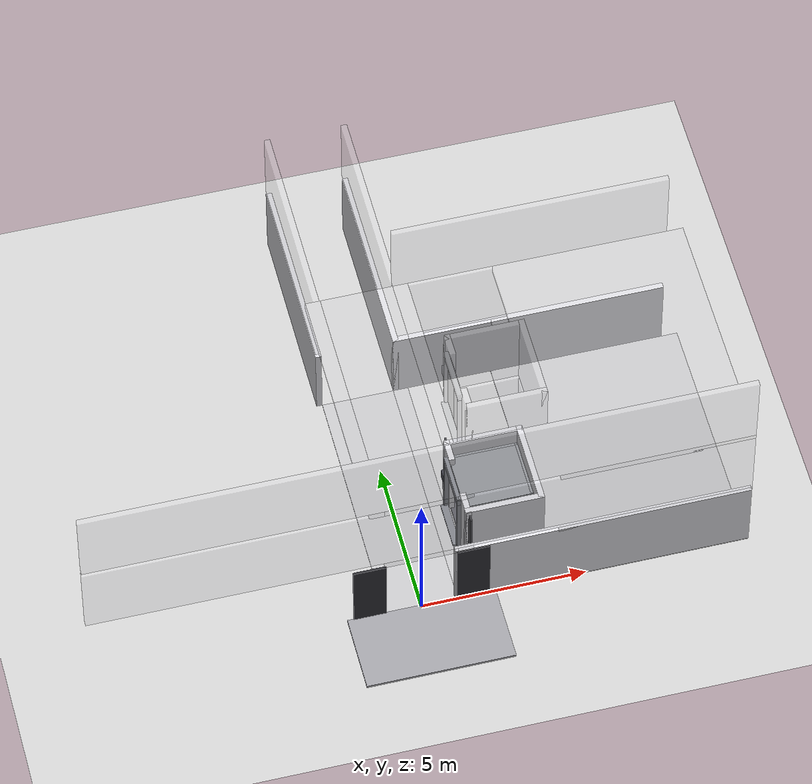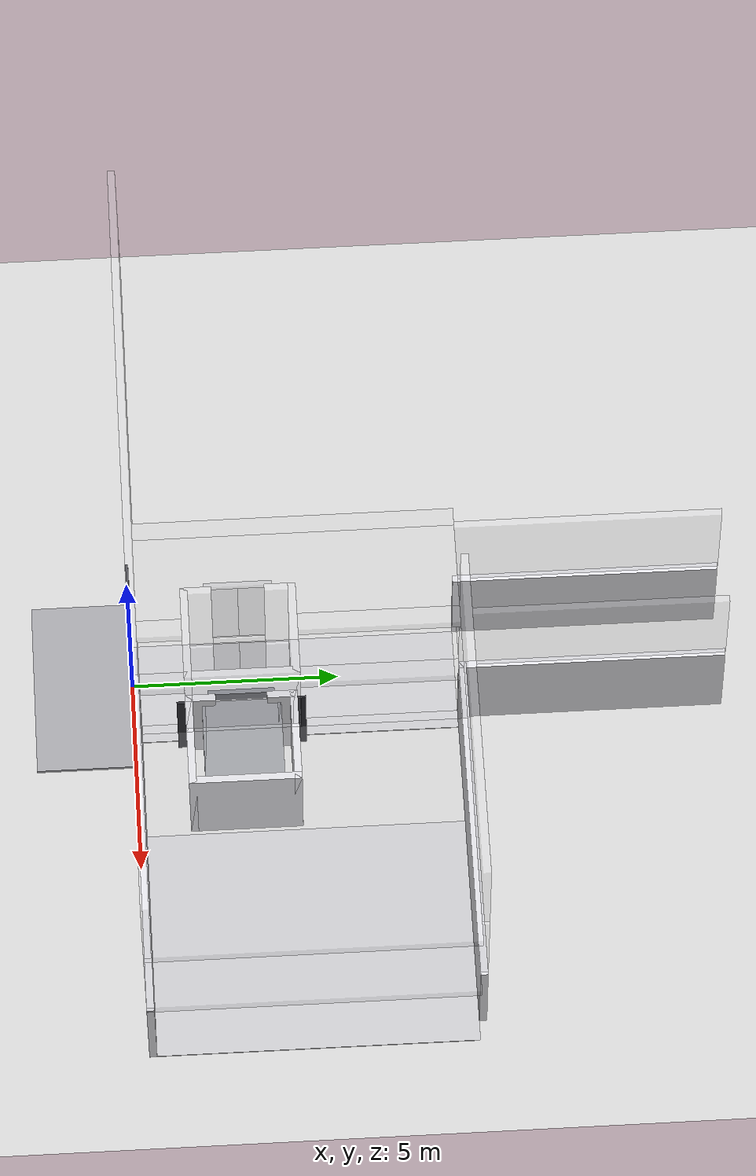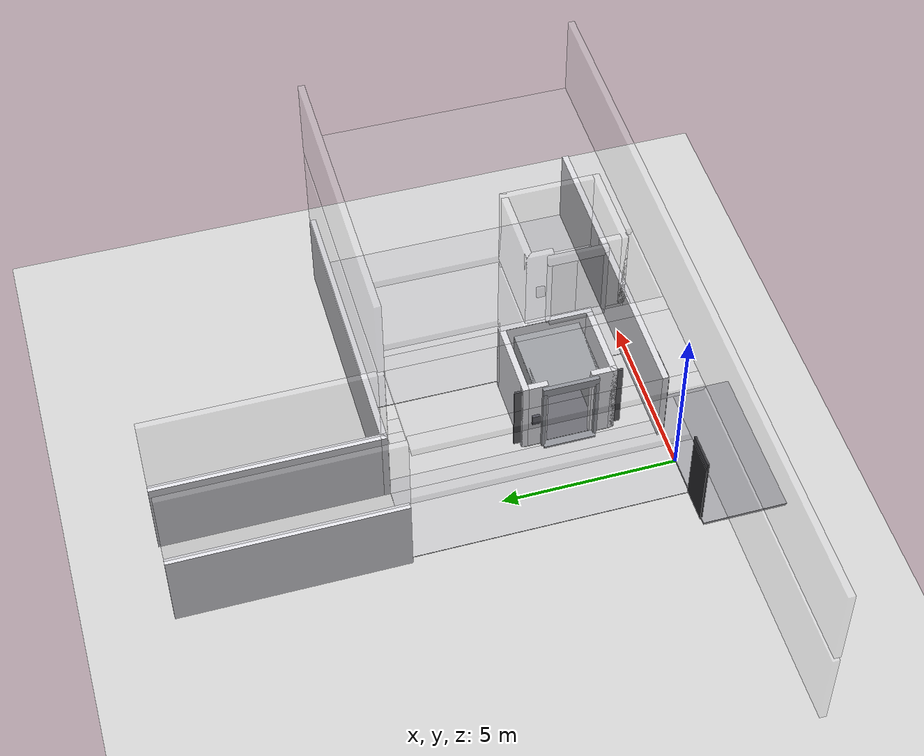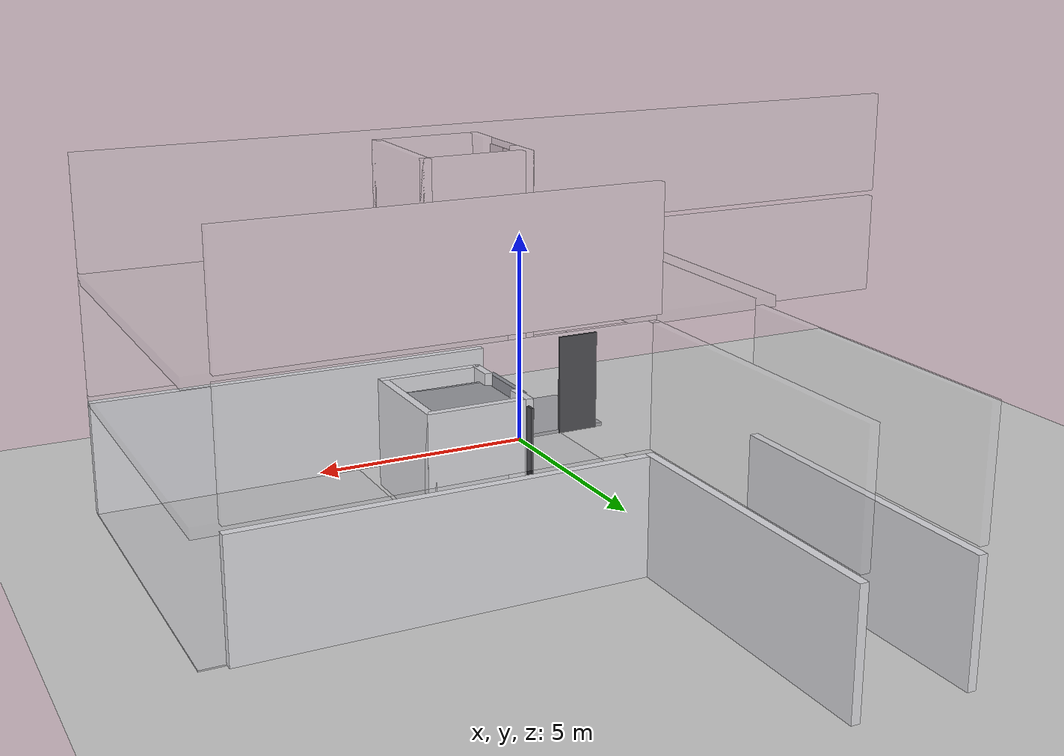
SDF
<sdf version="1.7">
 <world name="generated_world">
  <include><uri>model://sun</uri></include>
  <include><uri>model://ground_plane</uri></include>
  <model name="generated_building">
   <static>true</static>
   <link name="entrance_apron">
    <pose>0.0000 -1.2000 0.0400 0.0000 0.0000 0.0000</pose>
    <collision name="entrance_apron_collision">
     <geometry><box><size>4.5000 2.4000 0.0800</size></box></geometry>
    </collision>
    <visual name="entrance_apron_visual">
     <geometry><box><size>4.5000 2.4000 0.0800</size></box></geometry>
     <material><ambient>0.62 0.62 0.64 1</ambient><diffuse>0.62 0.62 0.64 1</diffuse></material>
    </visual>
    <gravity>false</gravity>
   </link>
   <link name="slab_floor_0_3">
    <pose>0.0000 3.9250 -0.1100 0.0000 0.0000 0.0000</pose>
    <collision name="slab_floor_0_3_collision">
     <geometry><box><size>2.2000 7.8500 0.2200</size></box></geometry>
    </collision>
    <visual name="slab_floor_0_3_visual">
     <geometry><box><size>2.2000 7.8500 0.2200</size></box></geometry>
     <material><ambient>0.76 0.76 0.77 1</ambient><diffuse>0.76 0.76 0.77 1</diffuse></material>
    </visual>
    <gravity>false</gravity>
   </link>
   <link name="slab_floor_0_4">
    <pose>1.3300 3.9250 -0.1100 0.0000 0.0000 0.0000</pose>
    <collision name="slab_floor_0_4_collision">
     <geometry><box><size>0.4600 7.8500 0.2200</size></box></geometry>
    </collision>
    <visual name="slab_floor_0_4_visual">
     <geometry><box><size>0.4600 7.8500 0.2200</size></box></geometry>
     <material><ambient>0.76 0.76 0.77 1</ambient><diffuse>0.76 0.76 0.77 1</diffuse></material>
    </visual>
    <gravity>false</gravity>
   </link>
   <link name="slab_floor_0_5">
    <pose>7.0700 3.9250 -0.1100 0.0000 0.0000 0.0000</pose>
    <collision name="slab_floor_0_5_collision">
     <geometry><box><size>5.8600 7.8500 0.2200</size></box></geometry>
    </collision>
    <visual name="slab_floor_0_5_visual">
     <geometry><box><size>5.8600 7.8500 0.2200</size></box></geometry>
     <material><ambient>0.76 0.76 0.77 1</ambient><diffuse>0.76 0.76 0.77 1</diffuse></material>
    </visual>
    <gravity>false</gravity>
   </link>
   <link name="exterior_south_entrance_right">
    <pose>5.5100 0.0900 1.2250 0.0000 0.0000 0.0000</pose>
    <collision name="exterior_south_entrance_right_collision">
     <geometry><box><size>8.9800 0.1800 2.4500</size></box></geometry>
    </collision>
    <visual name="exterior_south_entrance_right_visual">
     <geometry><box><size>8.9800 0.1800 2.4500</size></box></geometry>
     <material><ambient>0.86 0.86 0.88 1</ambient><diffuse>0.86 0.86 0.88 1</diffuse></material>
    </visual>
    <gravity>false</gravity>
   </link>
   <link name="floor_0_room_0_corridor_wall_lower">
    <pose>-1.1900 11.0575 1.2250 0.0000 0.0000 0.0000</pose>
    <collision name="floor_0_room_0_corridor_wall_lower_collision">
     <geometry><box><size>0.1800 6.4150 2.4500</size></box></geometry>
    </collision>
    <visual name="floor_0_room_0_corridor_wall_lower_visual">
     <geometry><box><size>0.1800 6.4150 2.4500</size></box></geometry>
     <material><ambient>0.86 0.86 0.88 1</ambient><diffuse>0.86 0.86 0.88 1</diffuse></material>
    </visual>
    <gravity>false</gravity>
   </link>
   <link name="floor_0_room_1_corridor_wall_lower">
    <pose>1.1900 11.0575 1.2250 0.0000 0.0000 0.0000</pose>
    <collision name="floor_0_room_1_corridor_wall_lower_collision">
     <geometry><box><size>0.1800 6.4150 2.4500</size></box></geometry>
    </collision>
    <visual name="floor_0_room_1_corridor_wall_lower_visual">
     <geometry><box><size>0.1800 6.4150 2.4500</size></box></geometry>
     <material><ambient>0.86 0.86 0.88 1</ambient><diffuse>0.86 0.86 0.88 1</diffuse></material>
    </visual>
    <gravity>false</gravity>
   </link>
   <link name="floor_0_room_1_south_wall">
    <pose>5.3000 7.9400 1.2250 0.0000 0.0000 0.0000</pose>
    <collision name="floor_0_room_1_south_wall_collision">
     <geometry><box><size>8.4000 0.1800 2.4500</size></box></geometry>
    </collision>
    <visual name="floor_0_room_1_south_wall_visual">
     <geometry><box><size>8.4000 0.1800 2.4500</size></box></geometry>
     <material><ambient>0.86 0.86 0.88 1</ambient><diffuse>0.86 0.86 0.88 1</diffuse></material>
    </visual>
    <gravity>false</gravity>
   </link>
   <link name="elevator_core_floor_0_west_lower">
    <pose>1.7400 1.6150 1.2250 0.0000 0.0000 0.0000</pose>
    <collision name="elevator_core_floor_0_west_lower_collision">
     <geometry><box><size>0.1800 0.7300 2.4500</size></box></geometry>
    </collision>
    <visual name="elevator_core_floor_0_west_lower_visual">
     <geometry><box><size>0.1800 0.7300 2.4500</size></box></geometry>
     <material><ambient>0.86 0.86 0.88 1</ambient><diffuse>0.86 0.86 0.88 1</diffuse></material>
    </visual>
    <gravity>false</gravity>
   </link>
   <link name="elevator_core_floor_0_west_upper">
    <pose>1.7400 3.5850 1.2250 0.0000 0.0000 0.0000</pose>
    <collision name="elevator_core_floor_0_west_upper_collision">
     <geometry><box><size>0.1800 0.7300 2.4500</size></box></geometry>
    </collision>
    <visual name="elevator_core_floor_0_west_upper_visual">
     <geometry><box><size>0.1800 0.7300 2.4500</size></box></geometry>
     <material><ambient>0.86 0.86 0.88 1</ambient><diffuse>0.86 0.86 0.88 1</diffuse></material>
    </visual>
    <gravity>false</gravity>
   </link>
   <link name="elevator_core_floor_0_east">
    <pose>3.9600 2.6000 1.2250 0.0000 0.0000 0.0000</pose>
    <collision name="elevator_core_floor_0_east_collision">
     <geometry><box><size>0.1800 2.7000 2.4500</size></box></geometry>
    </collision>
    <visual name="elevator_core_floor_0_east_visual">
     <geometry><box><size>0.1800 2.7000 2.4500</size></box></geometry>
     <material><ambient>0.86 0.86 0.88 1</ambient><diffuse>0.86 0.86 0.88 1</diffuse></material>
    </visual>
    <gravity>false</gravity>
   </link>
   <link name="elevator_core_floor_0_south">
    <pose>2.8500 1.3400 1.2250 0.0000 0.0000 0.0000</pose>
    <collision name="elevator_core_floor_0_south_collision">
     <geometry><box><size>2.4000 0.1800 2.4500</size></box></geometry>
    </collision>
    <visual name="elevator_core_floor_0_south_visual">
     <geometry><box><size>2.4000 0.1800 2.4500</size></box></geometry>
     <material><ambient>0.86 0.86 0.88 1</ambient><diffuse>0.86 0.86 0.88 1</diffuse></material>
    </visual>
    <gravity>false</gravity>
   </link>
   <link name="elevator_core_floor_0_north">
    <pose>2.8500 3.8600 1.2250 0.0000 0.0000 0.0000</pose>
    <collision name="elevator_core_floor_0_north_collision">
     <geometry><box><size>2.4000 0.1800 2.4500</size></box></geometry>
    </collision>
    <visual name="elevator_core_floor_0_north_visual">
     <geometry><box><size>2.4000 0.1800 2.4500</size></box></geometry>
     <material><ambient>0.86 0.86 0.88 1</ambient><diffuse>0.86 0.86 0.88 1</diffuse></material>
    </visual>
    <gravity>false</gravity>
   </link>
   <link name="elevator_threshold_floor_0">
    <pose>1.5400 2.6000 0.0300 0.0000 0.0000 0.0000</pose>
    <collision name="elevator_threshold_floor_0_collision">
     <geometry><box><size>0.2200 1.5000 0.0600</size></box></geometry>
    </collision>
    <visual name="elevator_threshold_floor_0_visual">
     <geometry><box><size>0.2200 1.5000 0.0600</size></box></geometry>
     <material><ambient>0.50 0.51 0.54 1</ambient><diffuse>0.50 0.51 0.54 1</diffuse></material>
    </visual>
    <gravity>false</gravity>
   </link>
   <link name="elevator_sill_infill_floor_0">
    <pose>1.6750 2.6000 -0.1100 0.0000 0.0000 0.0000</pose>
    <collision name="elevator_sill_infill_floor_0_collision">
     <geometry><box><size>0.0500 2.5200 0.2200</size></box></geometry>
    </collision>
    <visual name="elevator_sill_infill_floor_0_visual">
     <geometry><box><size>0.0500 2.5200 0.2200</size></box></geometry>
     <material><ambient>0.72 0.72 0.73 1</ambient><diffuse>0.72 0.72 0.73 1</diffuse></material>
    </visual>
    <gravity>false</gravity>
   </link>
   <link name="elevator_header_floor_0">
    <pose>1.5900 2.6000 2.2600 0.0000 0.0000 0.0000</pose>
    <collision name="elevator_header_floor_0_collision">
     <geometry><box><size>0.1200 1.6000 0.2800</size></box></geometry>
    </collision>
    <visual name="elevator_header_floor_0_visual">
     <geometry><box><size>0.1200 1.6000 0.2800</size></box></geometry>
     <material><ambient>0.50 0.51 0.54 1</ambient><diffuse>0.50 0.51 0.54 1</diffuse></material>
    </visual>
    <gravity>false</gravity>
   </link>
   <link name="elevator_jamb_left_floor_0">
    <pose>1.5900 1.8500 1.1000 0.0000 0.0000 0.0000</pose>
    <collision name="elevator_jamb_left_floor_0_collision">
     <geometry><box><size>0.1200 0.1000 2.2000</size></box></geometry>
    </collision>
    <visual name="elevator_jamb_left_floor_0_visual">
     <geometry><box><size>0.1200 0.1000 2.2000</size></box></geometry>
     <material><ambient>0.50 0.51 0.54 1</ambient><diffuse>0.50 0.51 0.54 1</diffuse></material>
    </visual>
    <gravity>false</gravity>
   </link>
   <link name="elevator_jamb_right_floor_0">
    <pose>1.5900 3.3500 1.1000 0.0000 0.0000 0.0000</pose>
    <collision name="elevator_jamb_right_floor_0_collision">
     <geometry><box><size>0.1200 0.1000 2.2000</size></box></geometry>
    </collision>
    <visual name="elevator_jamb_right_floor_0_visual">
     <geometry><box><size>0.1200 0.1000 2.2000</size></box></geometry>
     <material><ambient>0.50 0.51 0.54 1</ambient><diffuse>0.50 0.51 0.54 1</diffuse></material>
    </visual>
    <gravity>false</gravity>
   </link>
   <link name="elevator_call_panel_floor_0">
    <pose>1.5700 3.5800 1.2000 0.0000 0.0000 0.0000</pose>
    <collision name="elevator_call_panel_floor_0_collision">
     <geometry><box><size>0.0800 0.2200 0.3200</size></box></geometry>
    </collision>
    <visual name="elevator_call_panel_floor_0_visual">
     <geometry><box><size>0.0800 0.2200 0.3200</size></box></geometry>
     <material><ambient>0.20 0.20 0.24 1</ambient><diffuse>0.20 0.20 0.24 1</diffuse></material>
    </visual>
    <gravity>false</gravity>
   </link>
   <link name="slab_floor_1_3">
    <pose>0.0000 3.9250 2.4900 0.0000 0.0000 0.0000</pose>
    <collision name="slab_floor_1_3_collision">
     <geometry><box><size>2.2000 7.8500 0.2200</size></box></geometry>
    </collision>
    <visual name="slab_floor_1_3_visual">
     <geometry><box><size>2.2000 7.8500 0.2200</size></box></geometry>
     <material><ambient>0.76 0.76 0.77 1</ambient><diffuse>0.76 0.76 0.77 1</diffuse></material>
     <transparency>0.80</transparency>
    </visual>
    <gravity>false</gravity>
   </link>
   <link name="slab_floor_1_4">
    <pose>1.3300 3.9250 2.4900 0.0000 0.0000 0.0000</pose>
    <collision name="slab_floor_1_4_collision">
     <geometry><box><size>0.4600 7.8500 0.2200</size></box></geometry>
    </collision>
    <visual name="slab_floor_1_4_visual">
     <geometry><box><size>0.4600 7.8500 0.2200</size></box></geometry>
     <material><ambient>0.76 0.76 0.77 1</ambient><diffuse>0.76 0.76 0.77 1</diffuse></material>
     <transparency>0.80</transparency>
    </visual>
    <gravity>false</gravity>
   </link>
   <link name="slab_floor_1_5">
    <pose>7.0700 3.9250 2.4900 0.0000 0.0000 0.0000</pose>
    <collision name="slab_floor_1_5_collision">
     <geometry><box><size>5.8600 7.8500 0.2200</size></box></geometry>
    </collision>
    <visual name="slab_floor_1_5_visual">
     <geometry><box><size>5.8600 7.8500 0.2200</size></box></geometry>
     <material><ambient>0.76 0.76 0.77 1</ambient><diffuse>0.76 0.76 0.77 1</diffuse></material>
     <transparency>0.80</transparency>
    </visual>
    <gravity>false</gravity>
   </link>
   <link name="exterior_south_floor_1">
    <pose>0.0000 0.0900 3.8250 0.0000 0.0000 0.0000</pose>
    <collision name="exterior_south_floor_1_collision">
     <geometry><box><size>20.0000 0.1800 2.4500</size></box></geometry>
    </collision>
    <visual name="exterior_south_floor_1_visual">
     <geometry><box><size>20.0000 0.1800 2.4500</size></box></geometry>
     <material><ambient>0.86 0.86 0.88 1</ambient><diffuse>0.86 0.86 0.88 1</diffuse></material>
     <transparency>0.80</transparency>
    </visual>
    <gravity>false</gravity>
   </link>
   <link name="floor_1_room_0_corridor_wall_lower">
    <pose>-1.1900 11.0575 3.8250 0.0000 0.0000 0.0000</pose>
    <collision name="floor_1_room_0_corridor_wall_lower_collision">
     <geometry><box><size>0.1800 6.4150 2.4500</size></box></geometry>
    </collision>
    <visual name="floor_1_room_0_corridor_wall_lower_visual">
     <geometry><box><size>0.1800 6.4150 2.4500</size></box></geometry>
     <material><ambient>0.86 0.86 0.88 1</ambient><diffuse>0.86 0.86 0.88 1</diffuse></material>
     <transparency>0.80</transparency>
    </visual>
    <gravity>false</gravity>
   </link>
   <link name="floor_1_room_1_corridor_wall_lower">
    <pose>1.1900 11.0575 3.8250 0.0000 0.0000 0.0000</pose>
    <collision name="floor_1_room_1_corridor_wall_lower_collision">
     <geometry><box><size>0.1800 6.4150 2.4500</size></box></geometry>
    </collision>
    <visual name="floor_1_room_1_corridor_wall_lower_visual">
     <geometry><box><size>0.1800 6.4150 2.4500</size></box></geometry>
     <material><ambient>0.86 0.86 0.88 1</ambient><diffuse>0.86 0.86 0.88 1</diffuse></material>
     <transparency>0.80</transparency>
    </visual>
    <gravity>false</gravity>
   </link>
   <link name="floor_1_room_1_south_wall">
    <pose>5.3000 7.9400 3.8250 0.0000 0.0000 0.0000</pose>
    <collision name="floor_1_room_1_south_wall_collision">
     <geometry><box><size>8.4000 0.1800 2.4500</size></box></geometry>
    </collision>
    <visual name="floor_1_room_1_south_wall_visual">
     <geometry><box><size>8.4000 0.1800 2.4500</size></box></geometry>
     <material><ambient>0.86 0.86 0.88 1</ambient><diffuse>0.86 0.86 0.88 1</diffuse></material>
     <transparency>0.80</transparency>
    </visual>
    <gravity>false</gravity>
   </link>
   <link name="elevator_core_floor_1_west_lower">
    <pose>1.7400 1.6150 3.8250 0.0000 0.0000 0.0000</pose>
    <collision name="elevator_core_floor_1_west_lower_collision">
     <geometry><box><size>0.1800 0.7300 2.4500</size></box></geometry>
    </collision>
    <visual name="elevator_core_floor_1_west_lower_visual">
     <geometry><box><size>0.1800 0.7300 2.4500</size></box></geometry>
     <material><ambient>0.86 0.86 0.88 1</ambient><diffuse>0.86 0.86 0.88 1</diffuse></material>
     <transparency>0.80</transparency>
    </visual>
    <gravity>false</gravity>
   </link>
   <link name="elevator_core_floor_1_west_upper">
    <pose>1.7400 3.5850 3.8250 0.0000 0.0000 0.0000</pose>
    <collision name="elevator_core_floor_1_west_upper_collision">
     <geometry><box><size>0.1800 0.7300 2.4500</size></box></geometry>
    </collision>
    <visual name="elevator_core_floor_1_west_upper_visual">
     <geometry><box><size>0.1800 0.7300 2.4500</size></box></geometry>
     <material><ambient>0.86 0.86 0.88 1</ambient><diffuse>0.86 0.86 0.88 1</diffuse></material>
     <transparency>0.80</transparency>
    </visual>
    <gravity>false</gravity>
   </link>
   <link name="elevator_core_floor_1_east">
    <pose>3.9600 2.6000 3.8250 0.0000 0.0000 0.0000</pose>
    <collision name="elevator_core_floor_1_east_collision">
     <geometry><box><size>0.1800 2.7000 2.4500</size></box></geometry>
    </collision>
    <visual name="elevator_core_floor_1_east_visual">
     <geometry><box><size>0.1800 2.7000 2.4500</size></box></geometry>
     <material><ambient>0.86 0.86 0.88 1</ambient><diffuse>0.86 0.86 0.88 1</diffuse></material>
     <transparency>0.80</transparency>
    </visual>
    <gravity>false</gravity>
   </link>
   <link name="elevator_core_floor_1_south">
    <pose>2.8500 1.3400 3.8250 0.0000 0.0000 0.0000</pose>
    <collision name="elevator_core_floor_1_south_collision">
     <geometry><box><size>2.4000 0.1800 2.4500</size></box></geometry>
    </collision>
    <visual name="elevator_core_floor_1_south_visual">
     <geometry><box><size>2.4000 0.1800 2.4500</size></box></geometry>
     <material><ambient>0.86 0.86 0.88 1</ambient><diffuse>0.86 0.86 0.88 1</diffuse></material>
     <transparency>0.80</transparency>
    </visual>
    <gravity>false</gravity>
   </link>
   <link name="elevator_core_floor_1_north">
    <pose>2.8500 3.8600 3.8250 0.0000 0.0000 0.0000</pose>
    <collision name="elevator_core_floor_1_north_collision">
     <geometry><box><size>2.4000 0.1800 2.4500</size></box></geometry>
    </collision>
    <visual name="elevator_core_floor_1_north_visual">
     <geometry><box><size>2.4000 0.1800 2.4500</size></box></geometry>
     <material><ambient>0.86 0.86 0.88 1</ambient><diffuse>0.86 0.86 0.88 1</diffuse></material>
     <transparency>0.80</transparency>
    </visual>
    <gravity>false</gravity>
   </link>
   <link name="elevator_threshold_floor_1">
    <pose>1.5400 2.6000 2.6300 0.0000 0.0000 0.0000</pose>
    <collision name="elevator_threshold_floor_1_collision">
     <geometry><box><size>0.2200 1.5000 0.0600</size></box></geometry>
    </collision>
    <visual name="elevator_threshold_floor_1_visual">
     <geometry><box><size>0.2200 1.5000 0.0600</size></box></geometry>
     <material><ambient>0.50 0.51 0.54 1</ambient><diffuse>0.50 0.51 0.54 1</diffuse></material>
     <transparency>0.80</transparency>
    </visual>
    <gravity>false</gravity>
   </link>
   <link name="elevator_sill_infill_floor_1">
    <pose>1.6750 2.6000 2.4900 0.0000 0.0000 0.0000</pose>
    <collision name="elevator_sill_infill_floor_1_collision">
     <geometry><box><size>0.0500 2.5200 0.2200</size></box></geometry>
    </collision>
    <visual name="elevator_sill_infill_floor_1_visual">
     <geometry><box><size>0.0500 2.5200 0.2200</size></box></geometry>
     <material><ambient>0.72 0.72 0.73 1</ambient><diffuse>0.72 0.72 0.73 1</diffuse></material>
     <transparency>0.80</transparency>
    </visual>
    <gravity>false</gravity>
   </link>
   <link name="elevator_header_floor_1">
    <pose>1.5900 2.6000 4.8600 0.0000 0.0000 0.0000</pose>
    <collision name="elevator_header_floor_1_collision">
     <geometry><box><size>0.1200 1.6000 0.2800</size></box></geometry>
    </collision>
    <visual name="elevator_header_floor_1_visual">
     <geometry><box><size>0.1200 1.6000 0.2800</size></box></geometry>
     <material><ambient>0.50 0.51 0.54 1</ambient><diffuse>0.50 0.51 0.54 1</diffuse></material>
     <transparency>0.80</transparency>
    </visual>
    <gravity>false</gravity>
   </link>
   <link name="elevator_jamb_left_floor_1">
    <pose>1.5900 1.8500 3.7000 0.0000 0.0000 0.0000</pose>
    <collision name="elevator_jamb_left_floor_1_collision">
     <geometry><box><size>0.1200 0.1000 2.2000</size></box></geometry>
    </collision>
    <visual name="elevator_jamb_left_floor_1_visual">
     <geometry><box><size>0.1200 0.1000 2.2000</size></box></geometry>
     <material><ambient>0.50 0.51 0.54 1</ambient><diffuse>0.50 0.51 0.54 1</diffuse></material>
     <transparency>0.80</transparency>
    </visual>
    <gravity>false</gravity>
   </link>
   <link name="elevator_jamb_right_floor_1">
    <pose>1.5900 3.3500 3.7000 0.0000 0.0000 0.0000</pose>
    <collision name="elevator_jamb_right_floor_1_collision">
     <geometry><box><size>0.1200 0.1000 2.2000</size></box></geometry>
    </collision>
    <visual name="elevator_jamb_right_floor_1_visual">
     <geometry><box><size>0.1200 0.1000 2.2000</size></box></geometry>
     <material><ambient>0.50 0.51 0.54 1</ambient><diffuse>0.50 0.51 0.54 1</diffuse></material>
     <transparency>0.80</transparency>
    </visual>
    <gravity>false</gravity>
   </link>
   <link name="elevator_call_panel_floor_1">
    <pose>1.5700 3.5800 3.8000 0.0000 0.0000 0.0000</pose>
    <collision name="elevator_call_panel_floor_1_collision">
     <geometry><box><size>0.0800 0.2200 0.3200</size></box></geometry>
    </collision>
    <visual name="elevator_call_panel_floor_1_visual">
     <geometry><box><size>0.0800 0.2200 0.3200</size></box></geometry>
     <material><ambient>0.20 0.20 0.24 1</ambient><diffuse>0.20 0.20 0.24 1</diffuse></material>
     <transparency>0.80</transparency>
    </visual>
    <gravity>false</gravity>
   </link>
   <link name="slab_floor_2_2">
    <pose>-1.3300 3.9250 5.0900 0.0000 0.0000 0.0000</pose>
    <collision name="slab_floor_2_2_collision">
     <geometry><box><size>0.4600 7.8500 0.2200</size></box></geometry>
    </collision>
    <visual name="slab_floor_2_2_visual">
     <geometry><box><size>0.4600 7.8500 0.2200</size></box></geometry>
     <material><ambient>0.76 0.76 0.77 1</ambient><diffuse>0.76 0.76 0.77 1</diffuse></material>
     <transparency>0.80</transparency>
    </visual>
    <gravity>false</gravity>
   </link>
   <link name="slab_floor_2_3">
    <pose>0.0000 3.9250 5.0900 0.0000 0.0000 0.0000</pose>
    <collision name="slab_floor_2_3_collision">
     <geometry><box><size>2.2000 7.8500 0.2200</size></box></geometry>
    </collision>
    <visual name="slab_floor_2_3_visual">
     <geometry><box><size>2.2000 7.8500 0.2200</size></box></geometry>
     <material><ambient>0.76 0.76 0.77 1</ambient><diffuse>0.76 0.76 0.77 1</diffuse></material>
     <transparency>0.80</transparency>
    </visual>
    <gravity>false</gravity>
   </link>
   <link name="slab_floor_2_4">
    <pose>1.3300 3.9250 5.0900 0.0000 0.0000 0.0000</pose>
    <collision name="slab_floor_2_4_collision">
     <geometry><box><size>0.4600 7.8500 0.2200</size></box></geometry>
    </collision>
    <visual name="slab_floor_2_4_visual">
     <geometry><box><size>0.4600 7.8500 0.2200</size></box></geometry>
     <material><ambient>0.76 0.76 0.77 1</ambient><diffuse>0.76 0.76 0.77 1</diffuse></material>
     <transparency>0.80</transparency>
    </visual>
    <gravity>false</gravity>
   </link>
   <link name="slab_floor_2_5">
    <pose>7.0700 3.9250 5.0900 0.0000 0.0000 0.0000</pose>
    <collision name="slab_floor_2_5_collision">
     <geometry><box><size>5.8600 7.8500 0.2200</size></box></geometry>
    </collision>
    <visual name="slab_floor_2_5_visual">
     <geometry><box><size>5.8600 7.8500 0.2200</size></box></geometry>
     <material><ambient>0.76 0.76 0.77 1</ambient><diffuse>0.76 0.76 0.77 1</diffuse></material>
     <transparency>0.80</transparency>
    </visual>
    <gravity>false</gravity>
   </link>
   <link name="exterior_south_floor_2">
    <pose>0.0000 0.0900 6.4250 0.0000 0.0000 0.0000</pose>
    <collision name="exterior_south_floor_2_collision">
     <geometry><box><size>20.0000 0.1800 2.4500</size></box></geometry>
    </collision>
    <visual name="exterior_south_floor_2_visual">
     <geometry><box><size>20.0000 0.1800 2.4500</size></box></geometry>
     <material><ambient>0.86 0.86 0.88 1</ambient><diffuse>0.86 0.86 0.88 1</diffuse></material>
     <transparency>0.80</transparency>
    </visual>
    <gravity>false</gravity>
   </link>
   <link name="floor_2_room_1_south_wall">
    <pose>5.3000 7.9400 6.4250 0.0000 0.0000 0.0000</pose>
    <collision name="floor_2_room_1_south_wall_collision">
     <geometry><box><size>8.4000 0.1800 2.4500</size></box></geometry>
    </collision>
    <visual name="floor_2_room_1_south_wall_visual">
     <geometry><box><size>8.4000 0.1800 2.4500</size></box></geometry>
     <material><ambient>0.86 0.86 0.88 1</ambient><diffuse>0.86 0.86 0.88 1</diffuse></material>
     <transparency>0.80</transparency>
    </visual>
    <gravity>false</gravity>
   </link>
   <link name="elevator_core_floor_2_west_lower">
    <pose>1.7400 1.6150 6.4250 0.0000 0.0000 0.0000</pose>
    <collision name="elevator_core_floor_2_west_lower_collision">
     <geometry><box><size>0.1800 0.7300 2.4500</size></box></geometry>
    </collision>
    <visual name="elevator_core_floor_2_west_lower_visual">
     <geometry><box><size>0.1800 0.7300 2.4500</size></box></geometry>
     <material><ambient>0.86 0.86 0.88 1</ambient><diffuse>0.86 0.86 0.88 1</diffuse></material>
     <transparency>0.80</transparency>
    </visual>
    <gravity>false</gravity>
   </link>
   <link name="elevator_core_floor_2_west_upper">
    <pose>1.7400 3.5850 6.4250 0.0000 0.0000 0.0000</pose>
    <collision name="elevator_core_floor_2_west_upper_collision">
     <geometry><box><size>0.1800 0.7300 2.4500</size></box></geometry>
    </collision>
    <visual name="elevator_core_floor_2_west_upper_visual">
     <geometry><box><size>0.1800 0.7300 2.4500</size></box></geometry>
     <material><ambient>0.86 0.86 0.88 1</ambient><diffuse>0.86 0.86 0.88 1</diffuse></material>
     <transparency>0.80</transparency>
    </visual>
    <gravity>false</gravity>
   </link>
   <link name="elevator_core_floor_2_east">
    <pose>3.9600 2.6000 6.4250 0.0000 0.0000 0.0000</pose>
    <collision name="elevator_core_floor_2_east_collision">
     <geometry><box><size>0.1800 2.7000 2.4500</size></box></geometry>
    </collision>
    <visual name="elevator_core_floor_2_east_visual">
     <geometry><box><size>0.1800 2.7000 2.4500</size></box></geometry>
     <material><ambient>0.86 0.86 0.88 1</ambient><diffuse>0.86 0.86 0.88 1</diffuse></material>
     <transparency>0.80</transparency>
    </visual>
    <gravity>false</gravity>
   </link>
   <link name="elevator_core_floor_2_south">
    <pose>2.8500 1.3400 6.4250 0.0000 0.0000 0.0000</pose>
    <collision name="elevator_core_floor_2_south_collision">
     <geometry><box><size>2.4000 0.1800 2.4500</size></box></geometry>
    </collision>
    <visual name="elevator_core_floor_2_south_visual">
     <geometry><box><size>2.4000 0.1800 2.4500</size></box></geometry>
     <material><ambient>0.86 0.86 0.88 1</ambient><diffuse>0.86 0.86 0.88 1</diffuse></material>
     <transparency>0.80</transparency>
    </visual>
    <gravity>false</gravity>
   </link>
   <link name="elevator_core_floor_2_north">
    <pose>2.8500 3.8600 6.4250 0.0000 0.0000 0.0000</pose>
    <collision name="elevator_core_floor_2_north_collision">
     <geometry><box><size>2.4000 0.1800 2.4500</size></box></geometry>
    </collision>
    <visual name="elevator_core_floor_2_north_visual">
     <geometry><box><size>2.4000 0.1800 2.4500</size></box></geometry>
     <material><ambient>0.86 0.86 0.88 1</ambient><diffuse>0.86 0.86 0.88 1</diffuse></material>
     <transparency>0.80</transparency>
    </visual>
    <gravity>false</gravity>
   </link>
   <link name="elevator_threshold_floor_2">
    <pose>1.5400 2.6000 5.2300 0.0000 0.0000 0.0000</pose>
    <collision name="elevator_threshold_floor_2_collision">
     <geometry><box><size>0.2200 1.5000 0.0600</size></box></geometry>
    </collision>
    <visual name="elevator_threshold_floor_2_visual">
     <geometry><box><size>0.2200 1.5000 0.0600</size></box></geometry>
     <material><ambient>0.50 0.51 0.54 1</ambient><diffuse>0.50 0.51 0.54 1</diffuse></material>
     <transparency>0.80</transparency>
    </visual>
    <gravity>false</gravity>
   </link>
   <link name="elevator_sill_infill_floor_2">
    <pose>1.6750 2.6000 5.0900 0.0000 0.0000 0.0000</pose>
    <collision name="elevator_sill_infill_floor_2_collision">
     <geometry><box><size>0.0500 2.5200 0.2200</size></box></geometry>
    </collision>
    <visual name="elevator_sill_infill_floor_2_visual">
     <geometry><box><size>0.0500 2.5200 0.2200</size></box></geometry>
     <material><ambient>0.72 0.72 0.73 1</ambient><diffuse>0.72 0.72 0.73 1</diffuse></material>
     <transparency>0.80</transparency>
    </visual>
    <gravity>false</gravity>
   </link>
   <link name="elevator_header_floor_2">
    <pose>1.5900 2.6000 7.4600 0.0000 0.0000 0.0000</pose>
    <collision name="elevator_header_floor_2_collision">
     <geometry><box><size>0.1200 1.6000 0.2800</size></box></geometry>
    </collision>
    <visual name="elevator_header_floor_2_visual">
     <geometry><box><size>0.1200 1.6000 0.2800</size></box></geometry>
     <material><ambient>0.50 0.51 0.54 1</ambient><diffuse>0.50 0.51 0.54 1</diffuse></material>
     <transparency>0.80</transparency>
    </visual>
    <gravity>false</gravity>
   </link>
   <link name="elevator_jamb_left_floor_2">
    <pose>1.5900 1.8500 6.3000 0.0000 0.0000 0.0000</pose>
    <collision name="elevator_jamb_left_floor_2_collision">
     <geometry><box><size>0.1200 0.1000 2.2000</size></box></geometry>
    </collision>
    <visual name="elevator_jamb_left_floor_2_visual">
     <geometry><box><size>0.1200 0.1000 2.2000</size></box></geometry>
     <material><ambient>0.50 0.51 0.54 1</ambient><diffuse>0.50 0.51 0.54 1</diffuse></material>
     <transparency>0.80</transparency>
    </visual>
    <gravity>false</gravity>
   </link>
   <link name="elevator_jamb_right_floor_2">
    <pose>1.5900 3.3500 6.3000 0.0000 0.0000 0.0000</pose>
    <collision name="elevator_jamb_right_floor_2_collision">
     <geometry><box><size>0.1200 0.1000 2.2000</size></box></geometry>
    </collision>
    <visual name="elevator_jamb_right_floor_2_visual">
     <geometry><box><size>0.1200 0.1000 2.2000</size></box></geometry>
     <material><ambient>0.50 0.51 0.54 1</ambient><diffuse>0.50 0.51 0.54 1</diffuse></material>
     <transparency>0.80</transparency>
    </visual>
    <gravity>false</gravity>
   </link>
   <link name="elevator_call_panel_floor_2">
    <pose>1.5700 3.5800 6.4000 0.0000 0.0000 0.0000</pose>
    <collision name="elevator_call_panel_floor_2_collision">
     <geometry><box><size>0.0800 0.2200 0.3200</size></box></geometry>
    </collision>
    <visual name="elevator_call_panel_floor_2_visual">
     <geometry><box><size>0.0800 0.2200 0.3200</size></box></geometry>
     <material><ambient>0.20 0.20 0.24 1</ambient><diffuse>0.20 0.20 0.24 1</diffuse></material>
     <transparency>0.80</transparency>
    </visual>
    <gravity>false</gravity>
   </link>
  </model>
  <model name="dynamic_main_entrance">
   <static>false</static>
   <pose>0.0000 0.0000 1.2000 0.0000 0.0000 1.5708</pose>
   <link name="left_panel">
    <gravity>false</gravity>
    <kinematic>true</kinematic>
    <pose>0.0000 -1.5600 0.0000 0.0000 0.0000 0.0000</pose>
    <collision name="left_panel_collision">
     <geometry><box><size>0.0600 1.0000 2.4000</size></box></geometry>
    </collision>
    <visual name="left_panel_visual">
     <geometry><box><size>0.0600 1.0000 2.4000</size></box></geometry>
     <material><ambient>0.18 0.18 0.20 1</ambient><diffuse>0.18 0.18 0.20 1</diffuse></material>
    </visual>
   </link>
   <link name="right_panel">
    <gravity>false</gravity>
    <kinematic>true</kinematic>
    <pose>0.0000 1.5600 0.0000 0.0000 0.0000 0.0000</pose>
    <collision name="right_panel_collision">
     <geometry><box><size>0.0600 1.0000 2.4000</size></box></geometry>
    </collision>
    <visual name="right_panel_visual">
     <geometry><box><size>0.0600 1.0000 2.4000</size></box></geometry>
     <material><ambient>0.18 0.18 0.20 1</ambient><diffuse>0.18 0.18 0.20 1</diffuse></material>
    </visual>
   </link>
  </model>
  <model name="dynamic_elevator_floor_0">
   <static>false</static>
   <pose>1.6500 2.6000 1.2000 0.0000 0.0000 3.1416</pose>
   <link name="left_panel">
    <gravity>false</gravity>
    <kinematic>true</kinematic>
    <pose>-0.1200 -1.2000 0.0000 0.0000 0.0000 0.0000</pose>
    <collision name="left_panel_collision">
     <geometry><box><size>0.0600 0.7000 2.2000</size></box></geometry>
    </collision>
    <visual name="left_panel_visual">
     <geometry><box><size>0.0600 0.7000 2.2000</size></box></geometry>
     <material><ambient>0.18 0.18 0.20 1</ambient><diffuse>0.18 0.18 0.20 1</diffuse></material>
    </visual>
   </link>
   <link name="right_panel">
    <gravity>false</gravity>
    <kinematic>true</kinematic>
    <pose>-0.1200 1.2000 0.0000 0.0000 0.0000 0.0000</pose>
    <collision name="right_panel_collision">
     <geometry><box><size>0.0600 0.7000 2.2000</size></box></geometry>
    </collision>
    <visual name="right_panel_visual">
     <geometry><box><size>0.0600 0.7000 2.2000</size></box></geometry>
     <material><ambient>0.18 0.18 0.20 1</ambient><diffuse>0.18 0.18 0.20 1</diffuse></material>
    </visual>
   </link>
  </model>
  <model name="dynamic_elevator_floor_1">
   <static>false</static>
   <pose>1.6500 2.6000 3.8000 0.0000 0.0000 3.1416</pose>
   <link name="left_panel">
    <gravity>false</gravity>
    <kinematic>true</kinematic>
    <pose>0.0000 -0.3500 0.0000 0.0000 0.0000 0.0000</pose>
    <collision name="left_panel_collision">
     <geometry><box><size>0.0600 0.7000 2.2000</size></box></geometry>
    </collision>
    <visual name="left_panel_visual">
     <geometry><box><size>0.0600 0.7000 2.2000</size></box></geometry>
     <material><ambient>0.18 0.18 0.20 1</ambient><diffuse>0.18 0.18 0.20 1</diffuse></material>
     <transparency>0.80</transparency>
    </visual>
   </link>
   <link name="right_panel">
    <gravity>false</gravity>
    <kinematic>true</kinematic>
    <pose>0.0000 0.3500 0.0000 0.0000 0.0000 0.0000</pose>
    <collision name="right_panel_collision">
     <geometry><box><size>0.0600 0.7000 2.2000</size></box></geometry>
    </collision>
    <visual name="right_panel_visual">
     <geometry><box><size>0.0600 0.7000 2.2000</size></box></geometry>
     <material><ambient>0.18 0.18 0.20 1</ambient><diffuse>0.18 0.18 0.20 1</diffuse></material>
     <transparency>0.80</transparency>
    </visual>
   </link>
  </model>
  <model name="dynamic_elevator_floor_2">
   <static>false</static>
   <pose>1.6500 2.6000 6.4000 0.0000 0.0000 3.1416</pose>
   <link name="left_panel">
    <gravity>false</gravity>
    <kinematic>true</kinematic>
    <pose>0.0000 -0.3500 0.0000 0.0000 0.0000 0.0000</pose>
    <collision name="left_panel_collision">
     <geometry><box><size>0.0600 0.7000 2.2000</size></box></geometry>
    </collision>
    <visual name="left_panel_visual">
     <geometry><box><size>0.0600 0.7000 2.2000</size></box></geometry>
     <material><ambient>0.18 0.18 0.20 1</ambient><diffuse>0.18 0.18 0.20 1</diffuse></material>
     <transparency>0.80</transparency>
    </visual>
   </link>
   <link name="right_panel">
    <gravity>false</gravity>
    <kinematic>true</kinematic>
    <pose>0.0000 0.3500 0.0000 0.0000 0.0000 0.0000</pose>
    <collision name="right_panel_collision">
     <geometry><box><size>0.0600 0.7000 2.2000</size></box></geometry>
    </collision>
    <visual name="right_panel_visual">
     <geometry><box><size>0.0600 0.7000 2.2000</size></box></geometry>
     <material><ambient>0.18 0.18 0.20 1</ambient><diffuse>0.18 0.18 0.20 1</diffuse></material>
     <transparency>0.80</transparency>
    </visual>
   </link>
  </model>
  <model name="dynamic_elevator_main">
   <static>false</static>
   <pose>2.7600 2.6000 1.0300 0.0000 0.0000 -1.5708</pose>
   <link name="car">
    <gravity>false</gravity>
    <kinematic>true</kinematic>
    <collision name="car_floor_collision">
     <pose>0.0000 0.0000 -1.0900 0.0000 0.0000 0.0000</pose>
     <geometry><box><size>1.9000 2.1000 0.1200</size></box></geometry>
    </collision>
    <visual name="car_floor_visual">
     <pose>0.0000 0.0000 -1.0900 0.0000 0.0000 0.0000</pose>
     <geometry><box><size>1.9000 2.1000 0.1200</size></box></geometry>
     <material><ambient>0.32 0.32 0.35 1</ambient><diffuse>0.32 0.32 0.35 1</diffuse></material>
    </visual>
    <collision name="back_collision">
     <pose>0.0000 1.0100 0.0000 0.0000 0.0000 0.0000</pose>
     <geometry><box><size>1.9000 0.0800 2.3000</size></box></geometry>
    </collision>
    <visual name="back_visual">
     <pose>0.0000 1.0100 0.0000 0.0000 0.0000 0.0000</pose>
     <geometry><box><size>1.9000 0.0800 2.3000</size></box></geometry>
     <material><ambient>0.55 0.56 0.58 1</ambient><diffuse>0.55 0.56 0.58 1</diffuse></material>
    </visual>
    <collision name="left_collision">
     <pose>-0.9100 0.0000 0.0000 0.0000 0.0000 0.0000</pose>
     <geometry><box><size>0.0800 2.1000 2.3000</size></box></geometry>
    </collision>
    <visual name="left_visual">
     <pose>-0.9100 0.0000 0.0000 0.0000 0.0000 0.0000</pose>
     <geometry><box><size>0.0800 2.1000 2.3000</size></box></geometry>
     <material><ambient>0.55 0.56 0.58 1</ambient><diffuse>0.55 0.56 0.58 1</diffuse></material>
    </visual>
    <collision name="right_collision">
     <pose>0.9100 0.0000 0.0000 0.0000 0.0000 0.0000</pose>
     <geometry><box><size>0.0800 2.1000 2.3000</size></box></geometry>
    </collision>
    <visual name="right_visual">
     <pose>0.9100 0.0000 0.0000 0.0000 0.0000 0.0000</pose>
     <geometry><box><size>0.0800 2.1000 2.3000</size></box></geometry>
     <material><ambient>0.55 0.56 0.58 1</ambient><diffuse>0.55 0.56 0.58 1</diffuse></material>
    </visual>
    <collision name="top_collision">
     <pose>0.0000 0.0000 1.1200 0.0000 0.0000 0.0000</pose>
     <geometry><box><size>1.9000 2.1000 0.0600</size></box></geometry>
    </collision>
    <visual name="top_visual">
     <pose>0.0000 0.0000 1.1200 0.0000 0.0000 0.0000</pose>
     <geometry><box><size>1.9000 2.1000 0.0600</size></box></geometry>
     <material><ambient>0.55 0.56 0.58 1</ambient><diffuse>0.55 0.56 0.58 1</diffuse></material>
    </visual>
   </link>
  </model>
 </world>
</sdf>
